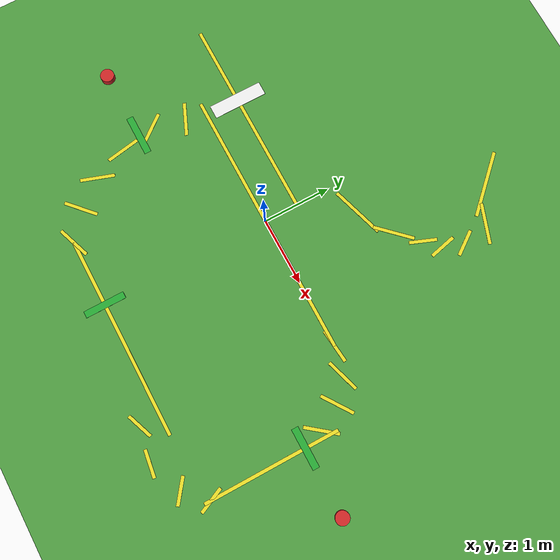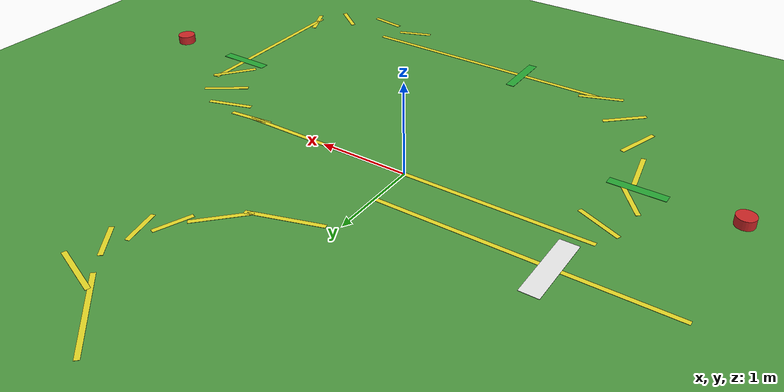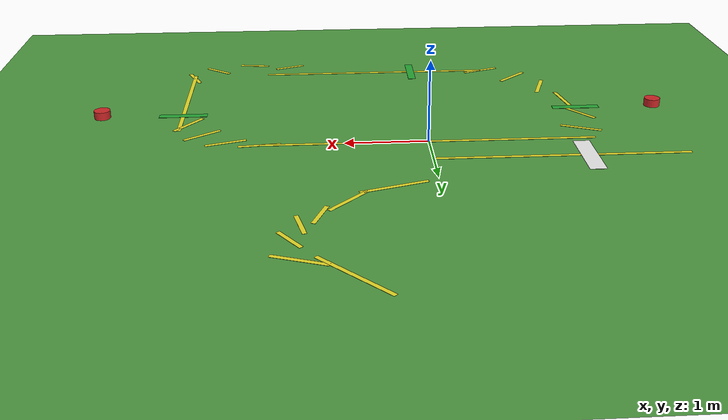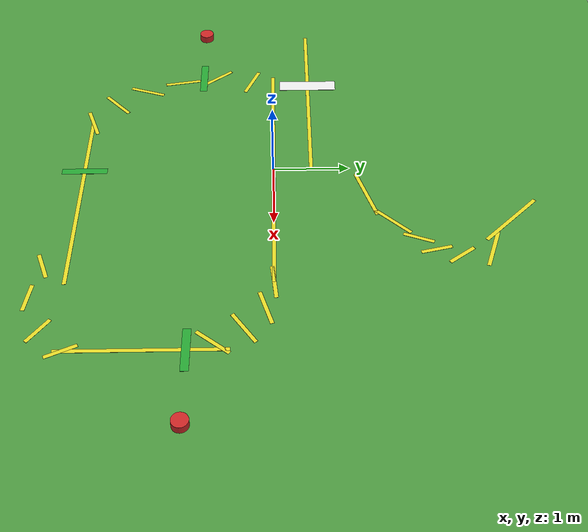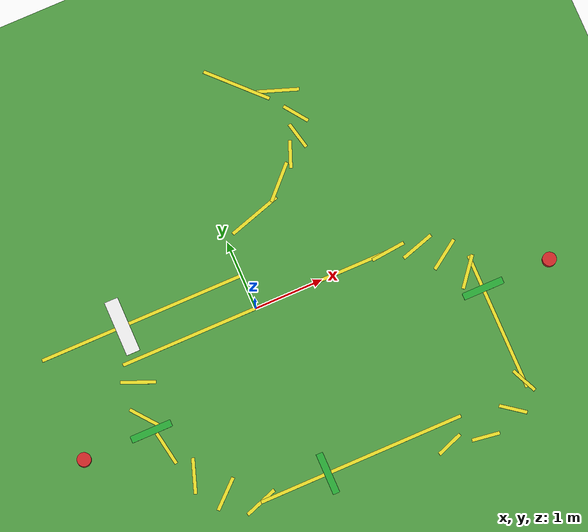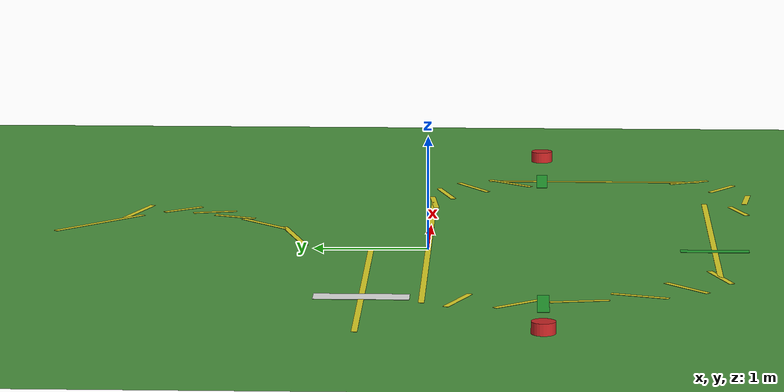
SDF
<?xml version="1.0" ?>
<sdf version="1.6">
  <world name="duckiebot_track_world">

    <!-- Physics settings for realistic simulation -->
    <physics name="default_physics" default="0" type="ode">
      <max_step_size>0.001</max_step_size>
      <real_time_factor>1.0</real_time_factor>
      <real_time_update_rate>1000</real_time_update_rate>
    </physics>

    <!-- Scene settings -->
    <scene>
      <ambient>0.4 0.4 0.4 1</ambient>
      <background>0.7 0.7 1.0 1</background>
      <shadows>true</shadows>
    </scene>

    <!-- Sun lighting -->
    <include>
      <uri>model://sun</uri>
    </include>

    <!-- Ground plane with texture -->
    <model name="ground_plane">
      <static>true</static>
      <link name="link">
        <collision name="collision">
          <geometry>
            <plane>
              <normal>0 0 1</normal>
              <size>30 30</size>
            </plane>
          </geometry>
        </collision>
        <visual name="visual">
          <geometry>
            <plane>
              <normal>0 0 1</normal>
              <size>30 30</size>
            </plane>
          </geometry>
          <material>
            <script>
              <uri>file://media/materials/scripts/gazebo.material</uri>
              <name>Gazebo/Grass</name>
            </script>
          </material>
        </visual>
      </link>
    </model>

    <!-- SECTION 1: Starting straight section -->
    <model name="lane_straight_1">
      <static>true</static>
      <pose>0 0 0.001 0 0 0</pose>
      <link name="link">
        <visual name="visual">
          <geometry>
            <box>
              <size>4.0 0.05 0.002</size>
            </box>
          </geometry>
          <material>
            <script>
              <name>Gazebo/Yellow</name>
            </script>
          </material>
        </visual>
      </link>
    </model>

    <!-- SECTION 2: Gentle right curve -->
    <!-- Curve segments to create smooth turn -->
    <model name="lane_curve_1_seg1">
      <static>true</static>
      <pose>2.0 0 0.001 0 0 0.1</pose>
      <link name="link">
        <visual name="visual">
          <geometry>
            <box>
              <size>0.5 0.05 0.002</size>
            </box>
          </geometry>
          <material>
            <script>
              <name>Gazebo/Yellow</name>
            </script>
          </material>
        </visual>
      </link>
    </model>

    <model name="lane_curve_1_seg2">
      <static>true</static>
      <pose>2.4 -0.1 0.001 0 0 0.3</pose>
      <link name="link">
        <visual name="visual">
          <geometry>
            <box>
              <size>0.5 0.05 0.002</size>
            </box>
          </geometry>
          <material>
            <script>
              <name>Gazebo/Yellow</name>
            </script>
          </material>
        </visual>
      </link>
    </model>

    <model name="lane_curve_1_seg3">
      <static>true</static>
      <pose>2.7 -0.35 0.001 0 0 0.6</pose>
      <link name="link">
        <visual name="visual">
          <geometry>
            <box>
              <size>0.5 0.05 0.002</size>
            </box>
          </geometry>
          <material>
            <script>
              <name>Gazebo/Yellow</name>
            </script>
          </material>
        </visual>
      </link>
    </model>

    <model name="lane_curve_1_seg4">
      <static>true</static>
      <pose>2.9 -0.7 0.001 0 0 0.9</pose>
      <link name="link">
        <visual name="visual">
          <geometry>
            <box>
              <size>0.5 0.05 0.002</size>
            </box>
          </geometry>
          <material>
            <script>
              <name>Gazebo/Yellow</name>
            </script>
          </material>
        </visual>
      </link>
    </model>

    <!-- SECTION 3: Straight section after first curve -->
    <model name="lane_straight_2">
      <static>true</static>
      <pose>3.0 -1.5 0.001 0 0 1.5708</pose>
      <link name="link">
        <visual name="visual">
          <geometry>
            <box>
              <size>2.0 0.05 0.002</size>
            </box>
          </geometry>
          <material>
            <script>
              <name>Gazebo/Yellow</name>
            </script>
          </material>
        </visual>
      </link>
    </model>

    <!-- SECTION 4: Sharp left turn (velocity challenge) -->
    <model name="lane_sharp_turn_1">
      <static>true</static>
      <pose>3.0 -2.4 0.001 0 0 2.0</pose>
      <link name="link">
        <visual name="visual">
          <geometry>
            <box>
              <size>0.4 0.05 0.002</size>
            </box>
          </geometry>
          <material>
            <script>
              <name>Gazebo/Yellow</name>
            </script>
          </material>
        </visual>
      </link>
    </model>

    <model name="lane_sharp_turn_2">
      <static>true</static>
      <pose>2.7 -2.7 0.001 0 0 2.5</pose>
      <link name="link">
        <visual name="visual">
          <geometry>
            <box>
              <size>0.4 0.05 0.002</size>
            </box>
          </geometry>
          <material>
            <script>
              <name>Gazebo/Yellow</name>
            </script>
          </material>
        </visual>
      </link>
    </model>

    <model name="lane_sharp_turn_3">
      <static>true</static>
      <pose>2.2 -2.9 0.001 0 0 3.0</pose>
      <link name="link">
        <visual name="visual">
          <geometry>
            <box>
              <size>0.4 0.05 0.002</size>
            </box>
          </geometry>
          <material>
            <script>
              <name>Gazebo/Yellow</name>
            </script>
          </material>
        </visual>
      </link>
    </model>

    <model name="lane_sharp_turn_4">
      <static>true</static>
      <pose>1.7 -2.8 0.001 0 0 3.5</pose>
      <link name="link">
        <visual name="visual">
          <geometry>
            <box>
              <size>0.4 0.05 0.002</size>
            </box>
          </geometry>
          <material>
            <script>
              <name>Gazebo/Yellow</name>
            </script>
          </material>
        </visual>
      </link>
    </model>

    <!-- SECTION 5: Long straight for speed testing -->
    <model name="lane_straight_3">
      <static>true</static>
      <pose>0.5 -2.5 0.001 0 0 3.14159</pose>
      <link name="link">
        <visual name="visual">
          <geometry>
            <box>
              <size>3.0 0.05 0.002</size>
            </box>
          </geometry>
          <material>
            <script>
              <name>Gazebo/Yellow</name>
            </script>
          </material>
        </visual>
      </link>
    </model>

    <!-- SECTION 6: S-curve challenge -->
    <!-- First part of S -->
    <model name="lane_s_curve_1">
      <static>true</static>
      <pose>-1.0 -2.5 0.001 0 0 -2.8</pose>
      <link name="link">
        <visual name="visual">
          <geometry>
            <box>
              <size>0.5 0.05 0.002</size>
            </box>
          </geometry>
          <material>
            <script>
              <name>Gazebo/Yellow</name>
            </script>
          </material>
        </visual>
      </link>
    </model>

    <model name="lane_s_curve_2">
      <static>true</static>
      <pose>-1.4 -2.2 0.001 0 0 -2.4</pose>
      <link name="link">
        <visual name="visual">
          <geometry>
            <box>
              <size>0.5 0.05 0.002</size>
            </box>
          </geometry>
          <material>
            <script>
              <name>Gazebo/Yellow</name>
            </script>
          </material>
        </visual>
      </link>
    </model>

    <model name="lane_s_curve_3">
      <static>true</static>
      <pose>-1.7 -1.8 0.001 0 0 -1.9</pose>
      <link name="link">
        <visual name="visual">
          <geometry>
            <box>
              <size>0.5 0.05 0.002</size>
            </box>
          </geometry>
          <material>
            <script>
              <name>Gazebo/Yellow</name>
            </script>
          </material>
        </visual>
      </link>
    </model>

    <!-- Second part of S -->
    <model name="lane_s_curve_4">
      <static>true</static>
      <pose>-1.9 -1.3 0.001 0 0 -1.4</pose>
      <link name="link">
        <visual name="visual">
          <geometry>
            <box>
              <size>0.5 0.05 0.002</size>
            </box>
          </geometry>
          <material>
            <script>
              <name>Gazebo/Yellow</name>
            </script>
          </material>
        </visual>
      </link>
    </model>

    <model name="lane_s_curve_5">
      <static>true</static>
      <pose>-2.0 -0.8 0.001 0 0 -0.9</pose>
      <link name="link">
        <visual name="visual">
          <geometry>
            <box>
              <size>0.5 0.05 0.002</size>
            </box>
          </geometry>
          <material>
            <script>
              <name>Gazebo/Yellow</name>
            </script>
          </material>
        </visual>
      </link>
    </model>

    <model name="lane_s_curve_6">
      <static>true</static>
      <pose>-1.9 -0.3 0.001 0 0 -0.4</pose>
      <link name="link">
        <visual name="visual">
          <geometry>
            <box>
              <size>0.5 0.05 0.002</size>
            </box>
          </geometry>
          <material>
            <script>
              <name>Gazebo/Yellow</name>
            </script>
          </material>
        </visual>
      </link>
    </model>

    <!-- SECTION 7: Final connecting section back to start -->
    <model name="lane_straight_4">
      <static>true</static>
      <pose>-1.5 0.5 0.001 0 0 0</pose>
      <link name="link">
        <visual name="visual">
          <geometry>
            <box>
              <size>3.0 0.05 0.002</size>
            </box>
          </geometry>
          <material>
            <script>
              <name>Gazebo/Yellow</name>
            </script>
          </material>
        </visual>
      </link>
    </model>

    <!-- ADDITIONAL CHALLENGE: Chicane section -->
    <!-- Left chicane -->
    <model name="chicane_left_1">
      <static>true</static>
      <pose>1.0 1.5 0.001 0 0 0.8</pose>
      <link name="link">
        <visual name="visual">
          <geometry>
            <box>
              <size>0.6 0.05 0.002</size>
            </box>
          </geometry>
          <material>
            <script>
              <name>Gazebo/Yellow</name>
            </script>
          </material>
        </visual>
      </link>
    </model>

    <model name="chicane_left_2">
      <static>true</static>
      <pose>1.3 1.8 0.001 0 0 1.2</pose>
      <link name="link">
        <visual name="visual">
          <geometry>
            <box>
              <size>0.4 0.05 0.002</size>
            </box>
          </geometry>
          <material>
            <script>
              <name>Gazebo/Yellow</name>
            </script>
          </material>
        </visual>
      </link>
    </model>

    <!-- Right chicane -->
    <model name="chicane_right_1">
      <static>true</static>
      <pose>1.5 2.0 0.001 0 0 1.8</pose>
      <link name="link">
        <visual name="visual">
          <geometry>
            <box>
              <size>0.4 0.05 0.002</size>
            </box>
          </geometry>
          <material>
            <script>
              <name>Gazebo/Yellow</name>
            </script>
          </material>
        </visual>
      </link>
    </model>

    <model name="chicane_right_2">
      <static>true</static>
      <pose>1.6 2.3 0.001 0 0 2.2</pose>
      <link name="link">
        <visual name="visual">
          <geometry>
            <box>
              <size>0.4 0.05 0.002</size>
            </box>
          </geometry>
          <material>
            <script>
              <name>Gazebo/Yellow</name>
            </script>
          </material>
        </visual>
      </link>
    </model>

    <!-- Final connection back to main track -->
    <model name="chicane_connect">
      <static>true</static>
      <pose>1.5 2.7 0.001 0 0 2.8</pose>
      <link name="link">
        <visual name="visual">
          <geometry>
            <box>
              <size>0.6 0.05 0.002</size>
            </box>
          </geometry>
          <material>
            <script>
              <name>Gazebo/Yellow</name>
            </script>
          </material>
        </visual>
      </link>
    </model>

    <!-- Connect chicane to main track -->
    <model name="lane_connect_1">
      <static>true</static>
      <pose>0.5 1.2 0.001 0 0 0.3</pose>
      <link name="link">
        <visual name="visual">
          <geometry>
            <box>
              <size>0.8 0.05 0.002</size>
            </box>
          </geometry>
          <material>
            <script>
              <name>Gazebo/Yellow</name>
            </script>
          </material>
        </visual>
      </link>
    </model>

    <model name="lane_connect_2">
      <static>true</static>
      <pose>1.0 3.0 0.001 0 0 -0.8</pose>
      <link name="link">
        <visual name="visual">
          <geometry>
            <box>
              <size>1.0 0.05 0.002</size>
            </box>
          </geometry>
          <material>
            <script>
              <name>Gazebo/Yellow</name>
            </script>
          </material>
        </visual>
      </link>
    </model>

    <!-- OBSTACLES for additional challenge (optional) -->
    <model name="obstacle_1">
      <static>true</static>
      <pose>4.0 -1.0 0.05 0 0 0</pose>
      <link name="link">
        <collision name="collision">
          <geometry>
            <cylinder>
              <radius>0.1</radius>
              <length>0.1</length>
            </cylinder>
          </geometry>
        </collision>
        <visual name="visual">
          <geometry>
            <cylinder>
              <radius>0.1</radius>
              <length>0.1</length>
            </cylinder>
          </geometry>
          <material>
            <script>
              <name>Gazebo/Red</name>
            </script>
          </material>
        </visual>
      </link>
    </model>

    <model name="obstacle_2">
      <static>true</static>
      <pose>-3.0 -1.0 0.05 0 0 0</pose>
      <link name="link">
        <collision name="collision">
          <geometry>
            <cylinder>
              <radius>0.1</radius>
              <length>0.1</length>
            </cylinder>
          </geometry>
        </collision>
        <visual name="visual">
          <geometry>
            <cylinder>
              <radius>0.1</radius>
              <length>0.1</length>
            </cylinder>
          </geometry>
          <material>
            <script>
              <name>Gazebo/Red</name>
            </script>
          </material>
        </visual>
      </link>
    </model>

    <!-- PERFORMANCE MEASUREMENT MARKERS -->
    <!-- Start/Finish line -->
    <model name="start_finish_line">
      <static>true</static>
      <pose>-1.8 0.5 0.001 0 0 0</pose>
      <link name="link">
        <visual name="visual">
          <geometry>
            <box>
              <size>0.2 0.8 0.003</size>
            </box>
          </geometry>
          <material>
            <script>
              <name>Gazebo/White</name>
            </script>
          </material>
        </visual>
      </link>
    </model>

    <!-- Checkpoint markers for timing -->
    <model name="checkpoint_1">
      <static>true</static>
      <pose>3.0 -1.0 0.001 0 0 1.5708</pose>
      <link name="link">
        <visual name="visual">
          <geometry>
            <box>
              <size>0.1 0.6 0.003</size>
            </box>
          </geometry>
          <material>
            <script>
              <name>Gazebo/Green</name>
            </script>
          </material>
        </visual>
      </link>
    </model>

    <model name="checkpoint_2">
      <static>true</static>
      <pose>0.0 -2.5 0.001 0 0 0</pose>
      <link name="link">
        <visual name="visual">
          <geometry>
            <box>
              <size>0.1 0.6 0.003</size>
            </box>
          </geometry>
          <material>
            <script>
              <name>Gazebo/Green</name>
            </script>
          </material>
        </visual>
      </link>
    </model>

    <model name="checkpoint_3">
      <static>true</static>
      <pose>-2.0 -1.0 0.001 0 0 1.5708</pose>
      <link name="link">
        <visual name="visual">
          <geometry>
            <box>
              <size>0.1 0.6 0.003</size>
            </box>
          </geometry>
          <material>
            <script>
              <name>Gazebo/Green</name>
            </script>
          </material>
        </visual>
      </link>
    </model>

    <!-- GUI configuration -->
    <gui fullscreen='0'>
      <camera name='user_camera'>
        <pose>0 0 8 0 1.5708 0</pose>
        <view_controller>orbit</view_controller>
      </camera>
    </gui>

  </world>
</sdf>
